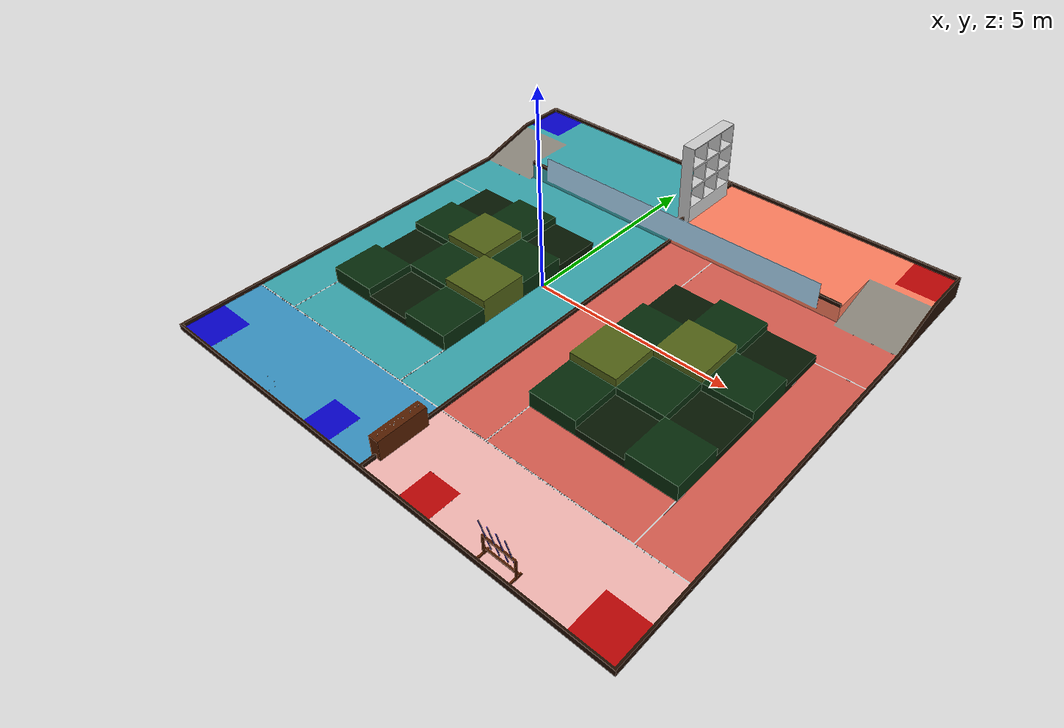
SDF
<sdf version='1.9'>
  <world name='empty'>
    <physics name='1ms' type='ode'>
      <max_step_size>0.001</max_step_size>
      <real_time_factor>1</real_time_factor>
      <real_time_update_rate>1000</real_time_update_rate>
    </physics>
    <plugin name='gz::sim::systems::Physics' filename='ignition-gazebo-physics-system'/>
    <plugin name='gz::sim::systems::UserCommands' filename='ignition-gazebo-user-commands-system'/>
    <plugin name='gz::sim::systems::SceneBroadcaster' filename='ignition-gazebo-scene-broadcaster-system'/>
    <plugin name='gz::sim::systems::Contact' filename='ignition-gazebo-contact-system'/>
    <gravity>0 0 -9.8</gravity>
    <magnetic_field>6e-06 2.3e-05 -4.2e-05</magnetic_field>
    <atmosphere type='adiabatic'/>
    <scene>
      <ambient>0.4 0.4 0.4 1</ambient>
      <background>0.7 0.7 0.7 1</background>
      <shadows>true</shadows>
    </scene>
    <model name='arena'>
      <static>true</static>
      <link name='link'>
        <visual name='visual'>
          <geometry>
            <mesh>
              <uri>package://mecanum_description/worlds/arena.dae</uri>
            </mesh>
          </geometry>
        </visual>
        <collision name='collision'>
          <geometry>
            <mesh>
              <uri>package://mecanum_description/worlds/arena_collision.dae</uri>
            </mesh>
          </geometry>
          <!-- ADD THIS -->
  <surface>
    <friction>
      <ode>
        <mu>2.0</mu>         <!-- forward friction -->
        <mu2>1.5</mu2>       <!-- sideways friction -->
        <fdir1>1 0 0</fdir1> <!-- friction direction (optional but good) -->
      </ode>
    </friction>

    <contact>
      <ode>
        <kp>1000000.0</kp>
        <kd>100.0</kd>
        <min_depth>0.001</min_depth>
        <max_vel>0.01</max_vel>
      </ode>
    </contact>
  </surface>
        </collision>
        <pose>0 0 0 0 -0 0</pose>
        <inertial>
          <pose>0 0 0 0 -0 0</pose>
          <mass>1</mass>
          <inertia>
            <ixx>1</ixx>
            <ixy>0</ixy>
            <ixz>0</ixz>
            <iyy>1</iyy>
            <iyz>0</iyz>
            <izz>1</izz>
          </inertia>
        </inertial>
        <enable_wind>false</enable_wind>
      </link>
      <pose>1.16104 -0.164178 0 0 -0 0</pose>
      <static>false</static>
      <self_collide>false</self_collide>
    </model>
    <light name='sun' type='directional'>
      <pose>0 0 10 0 -0 0</pose>
      <cast_shadows>true</cast_shadows>
      <intensity>1</intensity>
      <direction>-0.5 0.1 -0.9</direction>
      <diffuse>0.8 0.8 0.8 1</diffuse>
      <specular>0.2 0.2 0.2 1</specular>
      <attenuation>
        <range>1000</range>
        <linear>0.01</linear>
        <constant>0.90000000000000002</constant>
        <quadratic>0.001</quadratic>
      </attenuation>
      <spot>
        <inner_angle>0</inner_angle>
        <outer_angle>0</outer_angle>
        <falloff>0</falloff>
      </spot>
    </light>
  </world>
</sdf>
